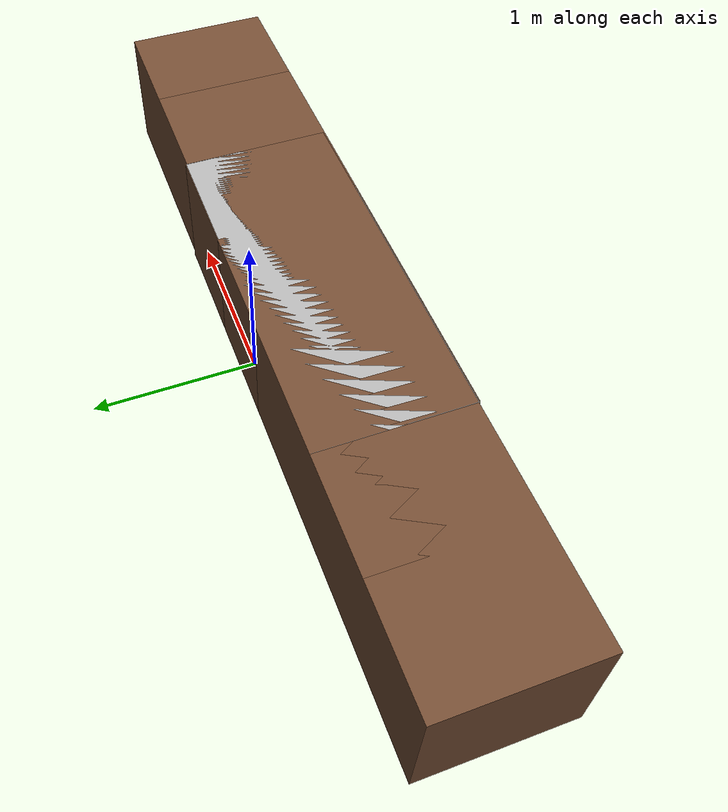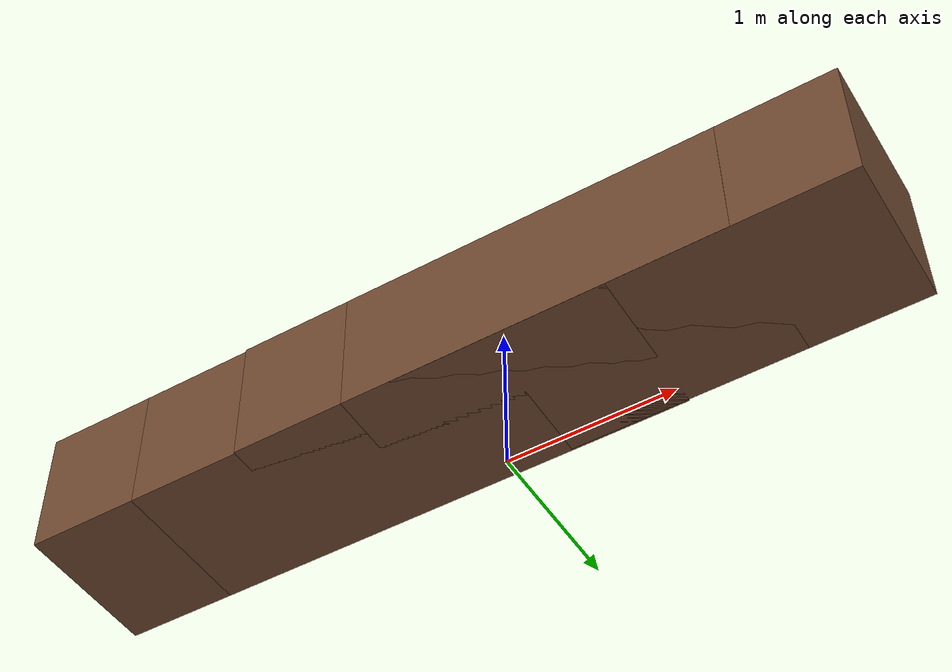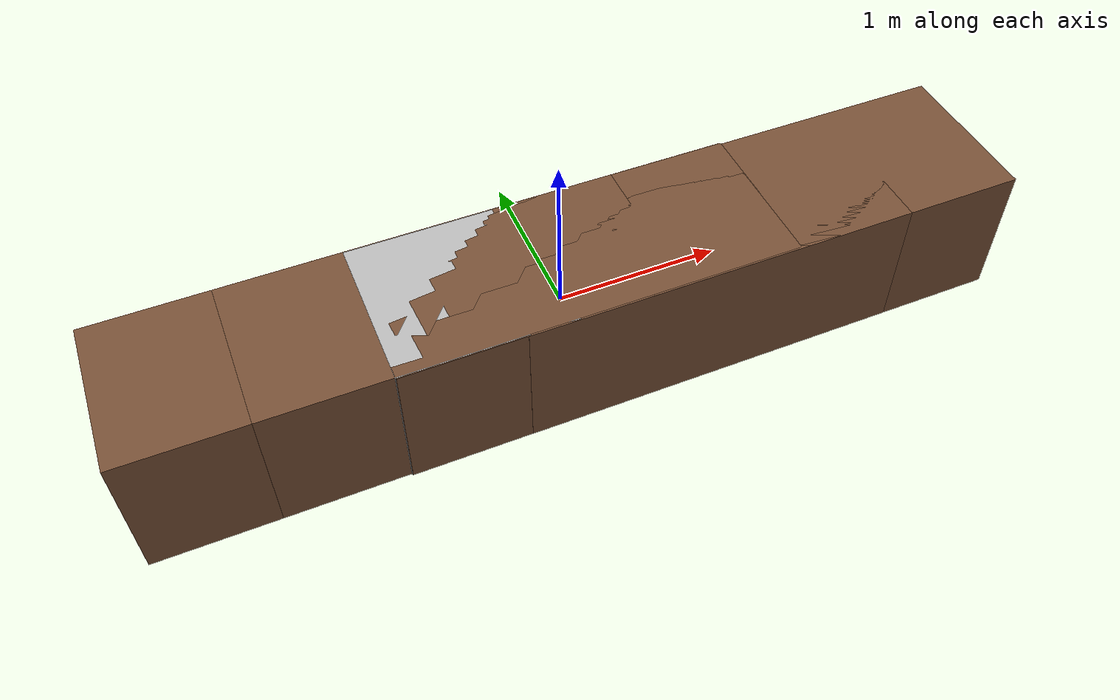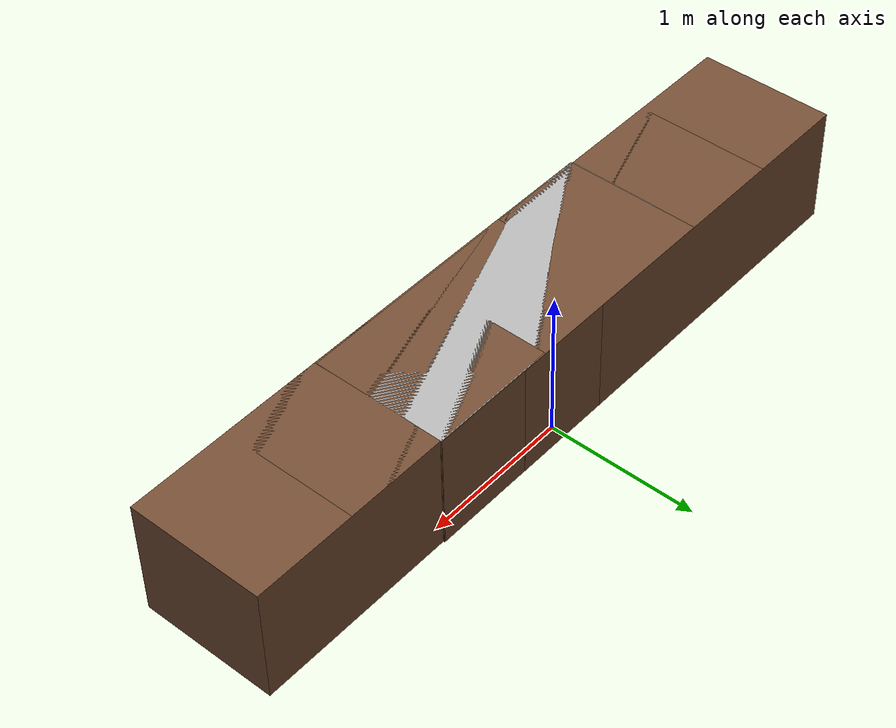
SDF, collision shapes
<?xml version='1.0' encoding='utf-8'?>
<sdf version="1.6">
  <model name="sofa_set_1">
    <link name="link_6">
      <pose frame="">-0.077061 -0.368992 -0.019897 0 -0 0</pose>
        <visual name="visual">
        <pose frame="">0 0 0 0 -0 0</pose>
        <geometry>
          <mesh>
            <uri>model://sofa_set_1/meshes/sofa_frame.dae</uri>
            <scale>1 1 1</scale>
          </mesh>
        </geometry>
        <material>
          <lighting>1</lighting>
          <ambient>0.7 0.7 0.7 1</ambient>
          <diffuse>0.7 0.7 0.7 1</diffuse>
          <specular>0.01 0.01 0.01 1</specular>
          <emissive>0 0 0 1</emissive>
        </material>
        <cast_shadows>1</cast_shadows>
        <transparency>0</transparency>
      </visual>
      <collision name="collision">
        <laser_retro>0</laser_retro>
        <max_contacts>10</max_contacts>
        <pose frame="">0 0 0.4000 0 0 0</pose>
        <geometry>
          <box><size>2.2 0.9 0.8</size></box></geometry>
       </collision>
    </link>
    <link name="link_13">
      <pose frame="">-0.073825 -0.365482 -0.019897 0 -0 0</pose>
         <visual name="visual">
        <pose frame="">0 0 0 0 -0 0</pose>
        <geometry>
          <mesh>
            <uri>model://sofa_set_1/meshes/sofa_cushions_bot.dae</uri>
            <scale>1 1 1</scale>
          </mesh>
        </geometry>
          <material>
          <ambient>0.35 0.22 0.15 1</ambient><diffuse>0.45 0.30 0.20 1</diffuse><specular>0.10 0.10 0.10 1</specular></material>
        <cast_shadows>1</cast_shadows>
        <transparency>0</transparency>
      </visual>
      <collision name="collision">
        <laser_retro>0</laser_retro>
        <max_contacts>10</max_contacts>
        <pose frame="">0 0 0.4000 0 0 0</pose>
        <geometry>
          <box><size>2.2 0.9 0.8</size></box></geometry>
        </collision>
    </link>
    <link name="link_13_clone">
      <pose frame="">-0.754653 -0.363822 -0.019897 0 -0 0</pose>
         <visual name="visual">
        <pose frame="">0 0 0 0 -0 0</pose>
        <geometry>
          <mesh>
            <uri>model://sofa_set_1/meshes/sofa_cushions_bot.dae</uri>
            <scale>1 1 1</scale>
          </mesh>
        </geometry>
                 <material>
          <ambient>0.35 0.22 0.15 1</ambient><diffuse>0.45 0.30 0.20 1</diffuse><specular>0.10 0.10 0.10 1</specular></material>
        <cast_shadows>1</cast_shadows>
        <transparency>0</transparency>
      </visual>
      <collision name="collision">
        <laser_retro>0</laser_retro>
        <max_contacts>10</max_contacts>
        <pose frame="">0 0 0.4000 0 0 0</pose>
        <geometry>
          <box><size>2.2 0.9 0.8</size></box></geometry>
       </collision>
    </link>
    <link name="link_13_clone_clone">
      <pose frame="">-1.425951 -0.36377 -0.019897 0 -0 0</pose>
       <visual name="visual">
        <pose frame="">0 0 0 0 -0 0</pose>
        <geometry>
          <mesh>
            <uri>model://sofa_set_1/meshes/sofa_cushions_bot.dae</uri>
            <scale>1 1 1</scale>
          </mesh>
        </geometry>
               <material>
          <ambient>0.35 0.22 0.15 1</ambient><diffuse>0.45 0.30 0.20 1</diffuse><specular>0.10 0.10 0.10 1</specular></material>
        <cast_shadows>1</cast_shadows>
        <transparency>0</transparency>
      </visual>
      <collision name="collision">
        <laser_retro>0</laser_retro>
        <max_contacts>10</max_contacts>
        <pose frame="">0 0 0.4000 0 0 0</pose>
        <geometry>
          <box><size>2.2 0.9 0.8</size></box></geometry>
        </collision>
    </link>
    <link name="link_14">
      <pose frame="">-0.073103 -0.373571 -0.019897 0 -0 0</pose>
        <visual name="visual">
        <pose frame="">0 0 0 0 -0 0</pose>
        <geometry>
          <mesh>
            <uri>model://sofa_set_1/meshes/sofa_cushions_back.dae</uri>
            <scale>1 1 1</scale>
          </mesh>
        </geometry>
                 <material>
          <ambient>0.35 0.22 0.15 1</ambient><diffuse>0.45 0.30 0.20 1</diffuse><specular>0.10 0.10 0.10 1</specular></material>
        <cast_shadows>1</cast_shadows>
        <transparency>0</transparency>
      </visual>
      <collision name="collision">
        <laser_retro>0</laser_retro>
        <max_contacts>10</max_contacts>
        <pose frame="">0 0 0.4000 0 0 0</pose>
        <geometry>
          <box><size>2.2 0.9 0.8</size></box></geometry>
       </collision>
    </link>
    <link name="link_14_clone">
      <pose frame="">0.596985 -0.374279 -0.019897 0 -0 0</pose>
       <visual name="visual">
        <pose frame="">0 0 0 0 -0 0</pose>
        <geometry>
          <mesh>
            <uri>model://sofa_set_1/meshes/sofa_cushions_back.dae</uri>
            <scale>1 1 1</scale>
          </mesh>
        </geometry>
                 <material>
          <ambient>0.35 0.22 0.15 1</ambient><diffuse>0.45 0.30 0.20 1</diffuse><specular>0.10 0.10 0.10 1</specular></material>
        <cast_shadows>1</cast_shadows>
        <transparency>0</transparency>
      </visual>
      <collision name="collision">
        <laser_retro>0</laser_retro>
        <max_contacts>10</max_contacts>
        <pose frame="">0 0 0.4000 0 0 0</pose>
        <geometry>
          <box><size>2.2 0.9 0.8</size></box></geometry>
        </collision>
    </link>
    <link name="link_14_clone_clone">
      <pose frame="">1.271119 -0.373824 -0.019897 0 -0 0</pose>
         <visual name="visual">
        <pose frame="">0 0 0 0 -0 0</pose>
        <geometry>
          <mesh>
            <uri>model://sofa_set_1/meshes/sofa_cushions_back.dae</uri>
            <scale>1 1 1</scale>
          </mesh>
        </geometry>
                 <material>
          <ambient>0.35 0.22 0.15 1</ambient><diffuse>0.45 0.30 0.20 1</diffuse><specular>0.10 0.10 0.10 1</specular></material>
        <cast_shadows>1</cast_shadows>
        <transparency>0</transparency>
      </visual>
      <collision name="collision">
        <laser_retro>0</laser_retro>
        <max_contacts>10</max_contacts>
        <pose frame="">0 0 0.4000 0 0 0</pose>
        <geometry>
          <box><size>2.2 0.9 0.8</size></box></geometry>
       </collision>
    </link>
    <link name="link_9">
      <pose frame="">-0.075683 -0.364116 -0.019897 0 -0 0</pose>
         <visual name="visual">
        <pose frame="">0 0 0 0 -0 0</pose>
        <geometry>
          <mesh>
            <uri>model://sofa_set_1/meshes/sofa_cushions_sides.dae</uri>
            <scale>1 1 1</scale>
          </mesh>
        </geometry>
                 <material>
          <ambient>0.35 0.22 0.15 1</ambient><diffuse>0.45 0.30 0.20 1</diffuse><specular>0.10 0.10 0.10 1</specular></material>
        <cast_shadows>1</cast_shadows>
        <transparency>0</transparency>
      </visual>
      <collision name="collision">
        <laser_retro>0</laser_retro>
        <max_contacts>10</max_contacts>
        <pose frame="">0 0 0.4000 0 0 0</pose>
        <geometry>
          <box><size>2.2 0.9 0.8</size></box></geometry>
       </collision>
    </link>
    <static>1</static>
    <allow_auto_disable>1</allow_auto_disable>
  </model>
</sdf>
